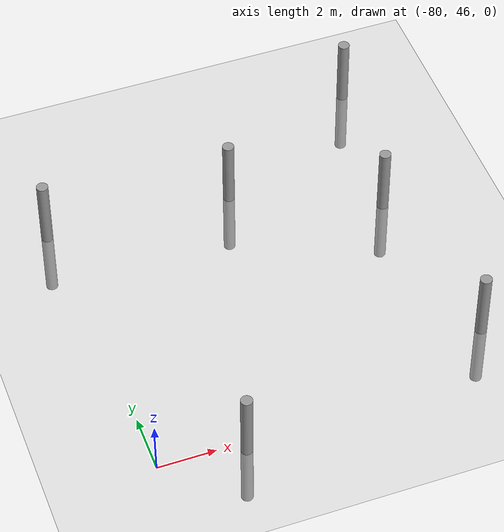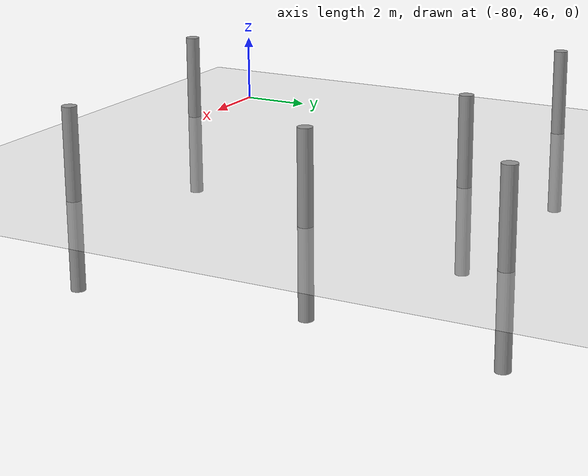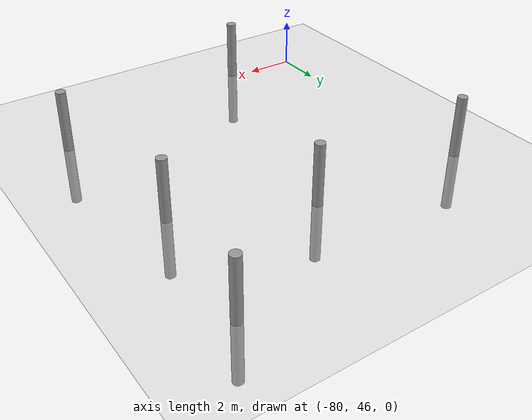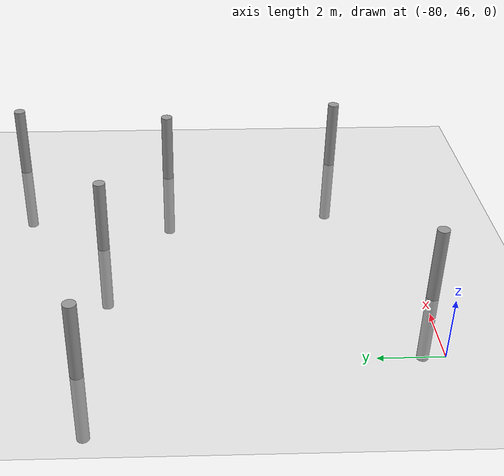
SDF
<sdf version="1.6">
 <world name="default">
  <model name="ground_plane">
   <static>1</static>
   <link name="link">
    <collision name="collision">
     <geometry><plane><normal>0 0 1</normal><size>100 100</size></plane></geometry>
     <surface><friction><ode><mu>100</mu><mu2>50</mu2></ode></friction></surface>
    </collision>
    <visual name="visual">
     <cast_shadows>0</cast_shadows>
     <geometry><plane><normal>0 0 1</normal><size>100 100</size></plane></geometry>
     <material>
      <script><uri>file://media/materials/scripts/gazebo.material</uri><name>Gazebo/Grey</name></script>
     </material>
    </visual>
   </link>
  </model>
  <model name="empty_pillars">
   <model name="empty_pillar_clone_11">
    <link name="link">
     <inertial>
      <mass>1</mass>
      <inertia><ixx>0.145833</ixx><ixy>0</ixy><ixz>0</ixz><iyy>0.145833</iyy><iyz>0</iyz><izz>0.125</izz></inertia>
     </inertial>
     <visual name="visual">
      <geometry><cylinder><radius>0.2</radius><length>5</length></cylinder></geometry>
      <material>
       <script><name>Gazebo/Grey</name><uri>file://media/materials/scripts/gazebo.material</uri></script>
       <shader type="vertex"><normal_map>__default__</normal_map></shader>
       <ambient>0.3 0.3 0.3 1</ambient>
       <diffuse>0.7 0.7 0.7 1</diffuse>
       <specular>0.01 0.01 0.01 1</specular>
       <emissive>0 0 0 1</emissive>
      </material>
     </visual>
     <collision name="collision">
      <geometry><cylinder><radius>0.05</radius><length>5</length></cylinder></geometry>
      <surface>
       <friction>
        <ode><mu>1</mu><mu2>1</mu2><fdir1>0 0 0</fdir1><slip1>0</slip1><slip2>0</slip2></ode>
        <torsional>
         <coefficient>1</coefficient>
         <patch_radius>0</patch_radius>
         <surface_radius>0</surface_radius>
         <use_patch_radius>1</use_patch_radius>
         <ode><slip>0</slip></ode>
        </torsional>
       </friction>
       <bounce><restitution_coefficient>0</restitution_coefficient><threshold>1e+06</threshold></bounce>
       <contact>
        <collide_without_contact>0</collide_without_contact>
        <collide_without_contact_bitmask>1</collide_without_contact_bitmask>
        <collide_bitmask>1</collide_bitmask>
        <ode>
         <soft_cfm>0</soft_cfm>
         <soft_erp>0.2</soft_erp>
         <kp>1e+13</kp>
         <kd>1</kd>
         <max_vel>0.01</max_vel>
         <min_depth>0</min_depth>
        </ode>
        <bullet>
         <split_impulse>1</split_impulse>
         <split_impulse_penetration_threshold>-0.01</split_impulse_penetration_threshold>
         <soft_cfm>0</soft_cfm>
         <soft_erp>0.2</soft_erp>
         <kp>1e+13</kp>
         <kd>1</kd>
        </bullet>
       </contact>
      </surface>
     </collision>
    </link>
    <static>0</static>
    <pose>7.98536 -17.8403 0 0 -0 0</pose>
   </model>
   <model name="empty_pillar_clone_12">
    <link name="link">
     <inertial>
      <mass>1</mass>
      <inertia><ixx>0.145833</ixx><ixy>0</ixy><ixz>0</ixz><iyy>0.145833</iyy><iyz>0</iyz><izz>0.125</izz></inertia>
     </inertial>
     <visual name="visual">
      <geometry><cylinder><radius>0.2</radius><length>5</length></cylinder></geometry>
      <material>
       <script><name>Gazebo/Grey</name><uri>file://media/materials/scripts/gazebo.material</uri></script>
       <shader type="vertex"><normal_map>__default__</normal_map></shader>
       <ambient>0.3 0.3 0.3 1</ambient>
       <diffuse>0.7 0.7 0.7 1</diffuse>
       <specular>0.01 0.01 0.01 1</specular>
       <emissive>0 0 0 1</emissive>
      </material>
     </visual>
     <collision name="collision">
      <geometry><cylinder><radius>0.05</radius><length>5</length></cylinder></geometry>
      <surface>
       <friction>
        <ode><mu>1</mu><mu2>1</mu2><fdir1>0 0 0</fdir1><slip1>0</slip1><slip2>0</slip2></ode>
        <torsional>
         <coefficient>1</coefficient>
         <patch_radius>0</patch_radius>
         <surface_radius>0</surface_radius>
         <use_patch_radius>1</use_patch_radius>
         <ode><slip>0</slip></ode>
        </torsional>
       </friction>
       <bounce><restitution_coefficient>0</restitution_coefficient><threshold>1e+06</threshold></bounce>
       <contact>
        <collide_without_contact>0</collide_without_contact>
        <collide_without_contact_bitmask>1</collide_without_contact_bitmask>
        <collide_bitmask>1</collide_bitmask>
        <ode>
         <soft_cfm>0</soft_cfm>
         <soft_erp>0.2</soft_erp>
         <kp>1e+13</kp>
         <kd>1</kd>
         <max_vel>0.01</max_vel>
         <min_depth>0</min_depth>
        </ode>
        <bullet>
         <split_impulse>1</split_impulse>
         <split_impulse_penetration_threshold>-0.01</split_impulse_penetration_threshold>
         <soft_cfm>0</soft_cfm>
         <soft_erp>0.2</soft_erp>
         <kp>1e+13</kp>
         <kd>1</kd>
        </bullet>
       </contact>
      </surface>
     </collision>
    </link>
    <static>0</static>
    <pose>-4.01464 -20.8403 0 0 -0 0</pose>
   </model>
   <model name="empty_pillar_clone_46">
    <link name="link">
     <inertial>
      <mass>1</mass>
      <inertia><ixx>0.145833</ixx><ixy>0</ixy><ixz>0</ixz><iyy>0.145833</iyy><iyz>0</iyz><izz>0.125</izz></inertia>
     </inertial>
     <visual name="visual">
      <geometry><cylinder><radius>0.2</radius><length>5</length></cylinder></geometry>
      <material>
       <script><name>Gazebo/Grey</name><uri>file://media/materials/scripts/gazebo.material</uri></script>
       <shader type="vertex"><normal_map>__default__</normal_map></shader>
       <ambient>0.3 0.3 0.3 1</ambient>
       <diffuse>0.7 0.7 0.7 1</diffuse>
       <specular>0.01 0.01 0.01 1</specular>
       <emissive>0 0 0 1</emissive>
      </material>
     </visual>
     <collision name="collision">
      <geometry><cylinder><radius>0.05</radius><length>5</length></cylinder></geometry>
      <surface>
       <friction>
        <ode><mu>1</mu><mu2>1</mu2><fdir1>0 0 0</fdir1><slip1>0</slip1><slip2>0</slip2></ode>
        <torsional>
         <coefficient>1</coefficient>
         <patch_radius>0</patch_radius>
         <surface_radius>0</surface_radius>
         <use_patch_radius>1</use_patch_radius>
         <ode><slip>0</slip></ode>
        </torsional>
       </friction>
       <bounce><restitution_coefficient>0</restitution_coefficient><threshold>1e+06</threshold></bounce>
       <contact>
        <collide_without_contact>0</collide_without_contact>
        <collide_without_contact_bitmask>1</collide_without_contact_bitmask>
        <collide_bitmask>1</collide_bitmask>
        <ode>
         <soft_cfm>0</soft_cfm>
         <soft_erp>0.2</soft_erp>
         <kp>1e+13</kp>
         <kd>1</kd>
         <max_vel>0.01</max_vel>
         <min_depth>0</min_depth>
        </ode>
        <bullet>
         <split_impulse>1</split_impulse>
         <split_impulse_penetration_threshold>-0.01</split_impulse_penetration_threshold>
         <soft_cfm>0</soft_cfm>
         <soft_erp>0.2</soft_erp>
         <kp>1e+13</kp>
         <kd>1</kd>
        </bullet>
       </contact>
      </surface>
     </collision>
    </link>
    <static>0</static>
    <pose>2.45033 -21.185 0 0 -0 0</pose>
   </model>
   <model name="empty_pillar_clone_53">
    <link name="link">
     <inertial>
      <mass>1</mass>
      <inertia><ixx>0.145833</ixx><ixy>0</ixy><ixz>0</ixz><iyy>0.145833</iyy><iyz>0</iyz><izz>0.125</izz></inertia>
     </inertial>
     <visual name="visual">
      <geometry><cylinder><radius>0.2</radius><length>5</length></cylinder></geometry>
      <material>
       <script><name>Gazebo/Grey</name><uri>file://media/materials/scripts/gazebo.material</uri></script>
       <shader type="vertex"><normal_map>__default__</normal_map></shader>
       <ambient>0.3 0.3 0.3 1</ambient>
       <diffuse>0.7 0.7 0.7 1</diffuse>
       <specular>0.01 0.01 0.01 1</specular>
       <emissive>0 0 0 1</emissive>
      </material>
     </visual>
     <collision name="collision">
      <geometry><cylinder><radius>0.05</radius><length>5</length></cylinder></geometry>
      <surface>
       <friction>
        <ode><mu>1</mu><mu2>1</mu2><fdir1>0 0 0</fdir1><slip1>0</slip1><slip2>0</slip2></ode>
        <torsional>
         <coefficient>1</coefficient>
         <patch_radius>0</patch_radius>
         <surface_radius>0</surface_radius>
         <use_patch_radius>1</use_patch_radius>
         <ode><slip>0</slip></ode>
        </torsional>
       </friction>
       <bounce><restitution_coefficient>0</restitution_coefficient><threshold>1e+06</threshold></bounce>
       <contact>
        <collide_without_contact>0</collide_without_contact>
        <collide_without_contact_bitmask>1</collide_without_contact_bitmask>
        <collide_bitmask>1</collide_bitmask>
        <ode>
         <soft_cfm>0</soft_cfm>
         <soft_erp>0.2</soft_erp>
         <kp>1e+13</kp>
         <kd>1</kd>
         <max_vel>0.01</max_vel>
         <min_depth>0</min_depth>
        </ode>
        <bullet>
         <split_impulse>1</split_impulse>
         <split_impulse_penetration_threshold>-0.01</split_impulse_penetration_threshold>
         <soft_cfm>0</soft_cfm>
         <soft_erp>0.2</soft_erp>
         <kp>1e+13</kp>
         <kd>1</kd>
        </bullet>
       </contact>
      </surface>
     </collision>
    </link>
    <static>0</static>
    <pose>7.32522 -23.3523 0 0 -0 0</pose>
   </model>
   <static>0</static>
   <pose>-76.4247 77.3975 0 0 -0 0</pose>
  </model>
  <model name="empty_pillars_6">
   <model name="empty_pillar_clone_23">
    <link name="link">
     <inertial>
      <mass>1</mass>
      <inertia><ixx>0.145833</ixx><ixy>0</ixy><ixz>0</ixz><iyy>0.145833</iyy><iyz>0</iyz><izz>0.125</izz></inertia>
     </inertial>
     <visual name="visual">
      <geometry><cylinder><radius>0.2</radius><length>5</length></cylinder></geometry>
      <material>
       <script><name>Gazebo/Grey</name><uri>file://media/materials/scripts/gazebo.material</uri></script>
       <shader type="vertex"><normal_map>__default__</normal_map></shader>
       <ambient>0.3 0.3 0.3 1</ambient>
       <diffuse>0.7 0.7 0.7 1</diffuse>
       <specular>0.01 0.01 0.01 1</specular>
       <emissive>0 0 0 1</emissive>
      </material>
     </visual>
     <collision name="collision">
      <geometry><cylinder><radius>0.05</radius><length>5</length></cylinder></geometry>
      <surface>
       <friction>
        <ode><mu>1</mu><mu2>1</mu2><fdir1>0 0 0</fdir1><slip1>0</slip1><slip2>0</slip2></ode>
        <torsional>
         <coefficient>1</coefficient>
         <patch_radius>0</patch_radius>
         <surface_radius>0</surface_radius>
         <use_patch_radius>1</use_patch_radius>
         <ode><slip>0</slip></ode>
        </torsional>
       </friction>
       <bounce><restitution_coefficient>0</restitution_coefficient><threshold>1e+06</threshold></bounce>
       <contact>
        <collide_without_contact>0</collide_without_contact>
        <collide_without_contact_bitmask>1</collide_without_contact_bitmask>
        <collide_bitmask>1</collide_bitmask>
        <ode>
         <soft_cfm>0</soft_cfm>
         <soft_erp>0.2</soft_erp>
         <kp>1e+13</kp>
         <kd>1</kd>
         <max_vel>0.01</max_vel>
         <min_depth>0</min_depth>
        </ode>
        <bullet>
         <split_impulse>1</split_impulse>
         <split_impulse_penetration_threshold>-0.01</split_impulse_penetration_threshold>
         <soft_cfm>0</soft_cfm>
         <soft_erp>0.2</soft_erp>
         <kp>1e+13</kp>
         <kd>1</kd>
        </bullet>
       </contact>
      </surface>
     </collision>
    </link>
    <static>0</static>
    <pose>-1.21984 18.1273 0 0 -0 0</pose>
   </model>
   <model name="empty_pillar_clone_26">
    <link name="link">
     <inertial>
      <mass>1</mass>
      <inertia><ixx>0.145833</ixx><ixy>0</ixy><ixz>0</ixz><iyy>0.145833</iyy><iyz>0</iyz><izz>0.125</izz></inertia>
     </inertial>
     <visual name="visual">
      <geometry><cylinder><radius>0.2</radius><length>5</length></cylinder></geometry>
      <material>
       <script><name>Gazebo/Grey</name><uri>file://media/materials/scripts/gazebo.material</uri></script>
       <shader type="vertex"><normal_map>__default__</normal_map></shader>
       <ambient>0.3 0.3 0.3 1</ambient>
       <diffuse>0.7 0.7 0.7 1</diffuse>
       <specular>0.01 0.01 0.01 1</specular>
       <emissive>0 0 0 1</emissive>
      </material>
     </visual>
     <collision name="collision">
      <geometry><cylinder><radius>0.05</radius><length>5</length></cylinder></geometry>
      <surface>
       <friction>
        <ode><mu>1</mu><mu2>1</mu2><fdir1>0 0 0</fdir1><slip1>0</slip1><slip2>0</slip2></ode>
        <torsional>
         <coefficient>1</coefficient>
         <patch_radius>0</patch_radius>
         <surface_radius>0</surface_radius>
         <use_patch_radius>1</use_patch_radius>
         <ode><slip>0</slip></ode>
        </torsional>
       </friction>
       <bounce><restitution_coefficient>0</restitution_coefficient><threshold>1e+06</threshold></bounce>
       <contact>
        <collide_without_contact>0</collide_without_contact>
        <collide_without_contact_bitmask>1</collide_without_contact_bitmask>
        <collide_bitmask>1</collide_bitmask>
        <ode>
         <soft_cfm>0</soft_cfm>
         <soft_erp>0.2</soft_erp>
         <kp>1e+13</kp>
         <kd>1</kd>
         <max_vel>0.01</max_vel>
         <min_depth>0</min_depth>
        </ode>
        <bullet>
         <split_impulse>1</split_impulse>
         <split_impulse_penetration_threshold>-0.01</split_impulse_penetration_threshold>
         <soft_cfm>0</soft_cfm>
         <soft_erp>0.2</soft_erp>
         <kp>1e+13</kp>
         <kd>1</kd>
        </bullet>
       </contact>
      </surface>
     </collision>
    </link>
    <static>0</static>
    <pose>7.70652 20.1444 0 0 -0 0</pose>
   </model>
   <static>0</static>
   <pose>-75.8833 27.5686 0 0 -0 0</pose>
  </model>
 </world>
</sdf>
